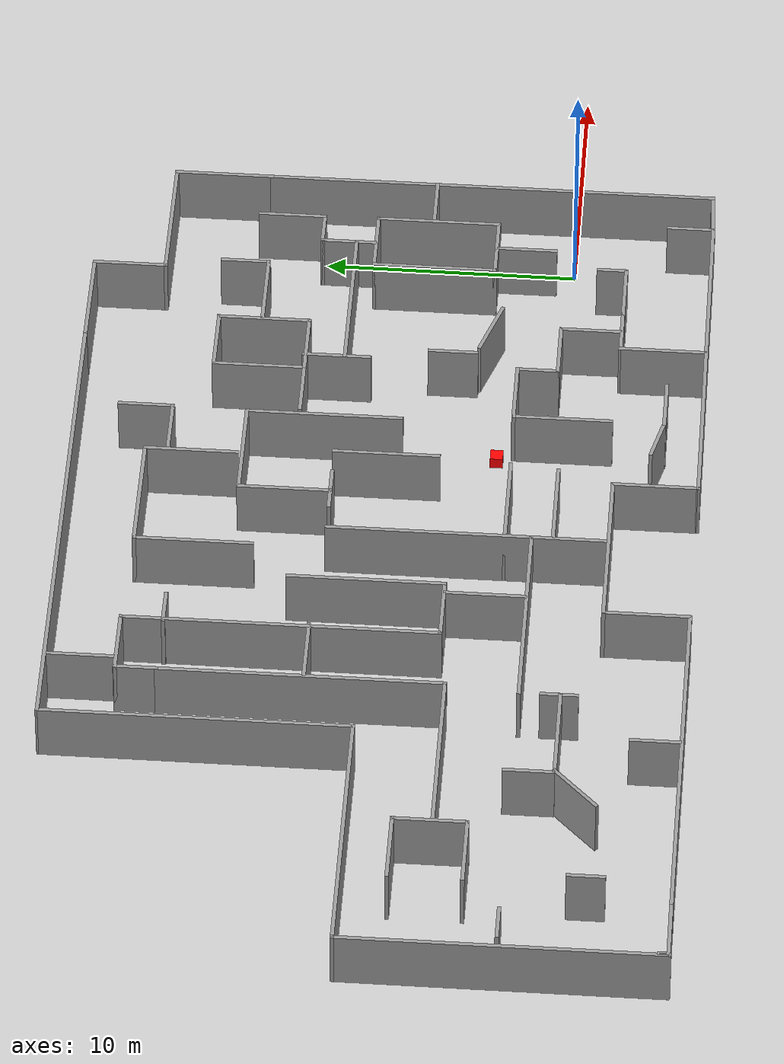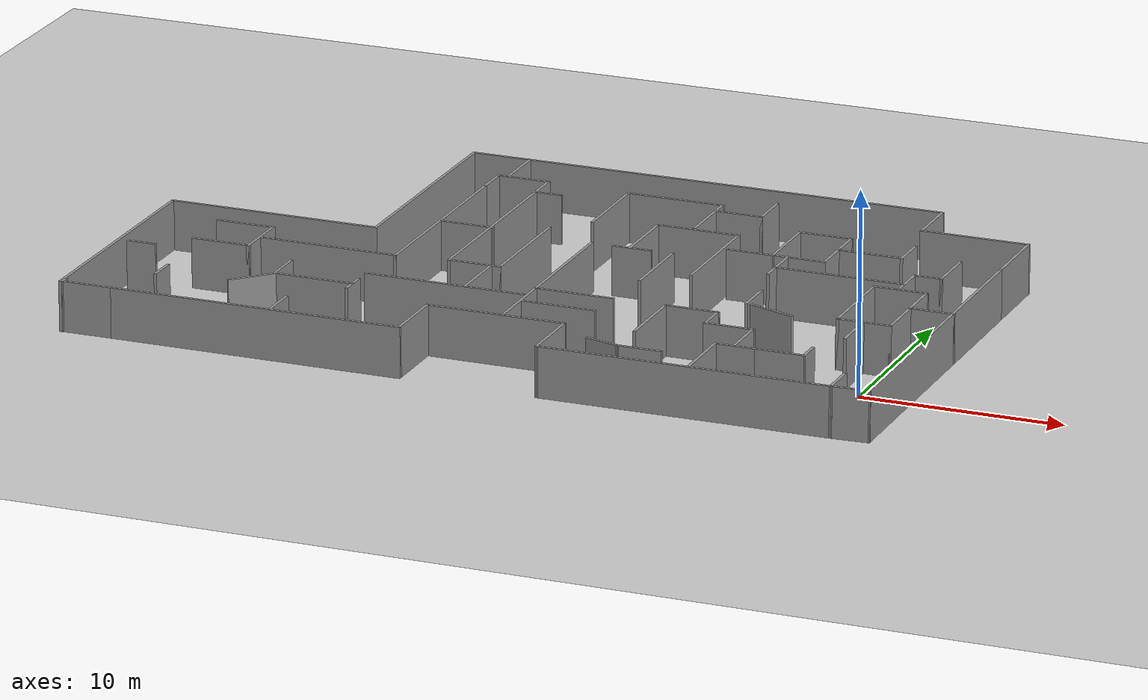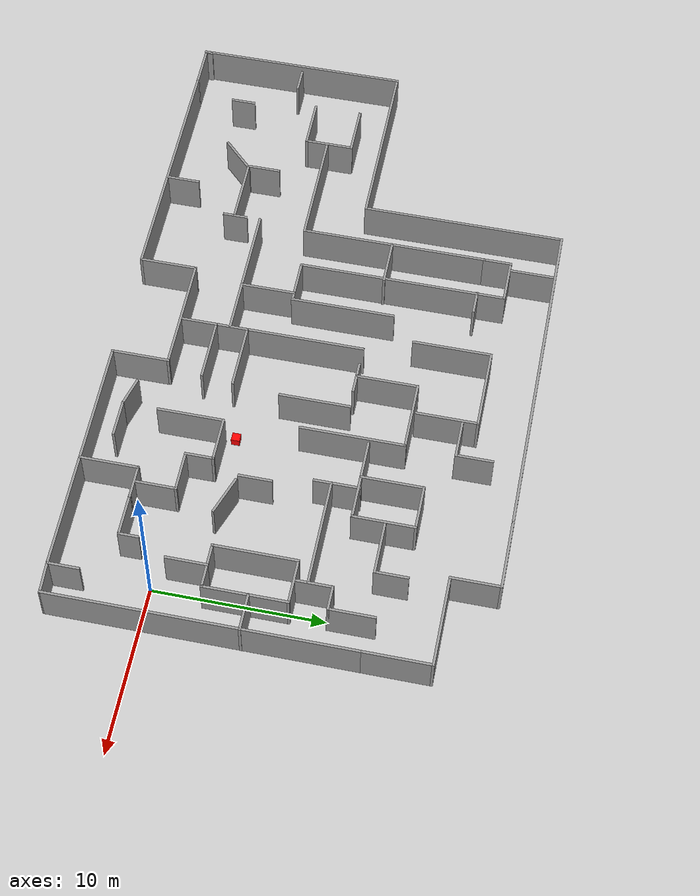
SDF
<sdf version="1.7">
 <world name="default">
  <light name="sun" type="directional">
   <pose>0 0 10 0 -0 0</pose>
   <diffuse>0.8 0.8 0.8 1</diffuse>
   <specular>0.2 0.2 0.2 1</specular>
   <attenuation>
    <range>1000</range>
    <constant>0.9</constant>
    <linear>0.01</linear>
    <quadratic>0.001</quadratic>
   </attenuation>
   <direction>-0.5 0.1 -0.9</direction>
   <spot><inner_angle>0</inner_angle><outer_angle>0</outer_angle><falloff>0</falloff></spot>
  </light>
  <model name="ground_plane">
   <static>1</static>
   <link name="link">
    <collision name="collision">
     <geometry><plane><normal>0 0 1</normal><size>100 100</size></plane></geometry>
     <surface><friction><ode><mu>100</mu><mu2>50</mu2></ode></friction></surface>
    </collision>
    <visual name="visual">
     <cast_shadows>0</cast_shadows>
     <geometry><plane><normal>0 0 1</normal><size>100 100</size></plane></geometry>
     <material>
      <script><uri>file://media/materials/scripts/gazebo.material</uri><name>Gazebo/Grey</name></script>
     </material>
    </visual>
   </link>
  </model>
  <gravity>0 0 -9.8</gravity>
  <magnetic_field>6e-06 2.3e-05 -4.2e-05</magnetic_field>
  <atmosphere type="adiabatic"/>
  <physics type="ode">
   <max_step_size>0.001</max_step_size>
   <real_time_factor>1</real_time_factor>
   <real_time_update_rate>1000</real_time_update_rate>
  </physics>
  <scene><ambient>0.4 0.4 0.4 1</ambient><background>0.7 0.7 0.7 1</background><shadows>1</shadows></scene>
  <spherical_coordinates>
   <surface_model>EARTH_WGS84</surface_model>
   <latitude_deg>0</latitude_deg>
   <longitude_deg>0</longitude_deg>
   <elevation>0</elevation>
   <heading_deg>0</heading_deg>
  </spherical_coordinates>
  <model name="world_5">
   <pose>-17.654 6.75687 0 0 -0 0</pose>
   <link name="Wall_11">
    <collision name="Wall_11_Collision">
     <geometry><box><size>3.5 0.15 2.5</size></box></geometry>
     <pose>0 0 1.25 0 -0 0</pose>
    </collision>
    <visual name="Wall_11_Visual">
     <pose>0 0 1.25 0 -0 0</pose>
     <geometry><box><size>3.5 0.15 2.5</size></box></geometry>
     <material>
      <script><uri>file://media/materials/scripts/gazebo.material</uri><name>Gazebo/Grey</name></script>
      <ambient>1 1 1 1</ambient>
     </material>
     <meta><layer>0</layer></meta>
    </visual>
    <pose>-2.85604 -10.6615 0 0 -0 -1.5708</pose>
   </link>
   <link name="Wall_12">
    <collision name="Wall_12_Collision">
     <geometry><box><size>14.75 0.15 2.5</size></box></geometry>
     <pose>0 0 1.25 0 -0 0</pose>
    </collision>
    <visual name="Wall_12_Visual">
     <pose>0 0 1.25 0 -0 0</pose>
     <geometry><box><size>14.75 0.15 2.5</size></box></geometry>
     <material>
      <script><uri>file://media/materials/scripts/gazebo.material</uri><name>Gazebo/Grey</name></script>
      <ambient>1 1 1 1</ambient>
     </material>
     <meta><layer>0</layer></meta>
    </visual>
    <pose>-10.156 -12.3365 0 0 -0 3.14159</pose>
   </link>
   <link name="Wall_14">
    <collision name="Wall_14_Collision">
     <geometry><box><size>3.5 0.15 2.5</size></box></geometry>
     <pose>0 0 1.25 0 -0 0</pose>
    </collision>
    <visual name="Wall_14_Visual">
     <pose>0 0 1.25 0 -0 0</pose>
     <geometry><box><size>3.5 0.15 2.5</size></box></geometry>
     <material>
      <script><uri>file://media/materials/scripts/gazebo.material</uri><name>Gazebo/Grey</name></script>
      <ambient>1 1 1 1</ambient>
     </material>
     <meta><layer>0</layer></meta>
    </visual>
    <pose>11.4235 -10.5695 0 0 -0 1.5708</pose>
   </link>
   <link name="Wall_190">
    <collision name="Wall_190_Collision">
     <geometry><box><size>12.25 0.15 2.5</size></box></geometry>
     <pose>0 0 1.25 0 -0 0</pose>
    </collision>
    <visual name="Wall_190_Visual">
     <pose>0 0 1.25 0 -0 0</pose>
     <geometry><box><size>12.25 0.15 2.5</size></box></geometry>
     <material>
      <script><uri>file://media/materials/scripts/gazebo.material</uri><name>Gazebo/Grey</name></script>
      <ambient>1 1 1 1</ambient>
     </material>
     <meta><layer>0</layer></meta>
    </visual>
    <pose>-9.42796 6.2709 0 0 -0 -1.5708</pose>
   </link>
   <link name="Wall_191">
    <collision name="Wall_191_Collision">
     <geometry><box><size>10.75 0.15 2.5</size></box></geometry>
     <pose>0 0 1.25 0 -0 0</pose>
    </collision>
    <visual name="Wall_191_Visual">
     <pose>0 0 1.25 0 -0 0</pose>
     <geometry><box><size>10.75 0.15 2.5</size></box></geometry>
     <material>
      <script><uri>file://media/materials/scripts/gazebo.material</uri><name>Gazebo/Grey</name></script>
      <ambient>1 1 1 1</ambient>
     </material>
     <meta><layer>0</layer></meta>
    </visual>
    <pose>-14.728 0.220902 0 0 -0 3.14159</pose>
   </link>
   <link name="Wall_193">
    <collision name="Wall_193_Collision">
     <geometry><box><size>20.2762 0.15 2.5</size></box></geometry>
     <pose>0 0 1.25 0 -0 0</pose>
    </collision>
    <visual name="Wall_193_Visual">
     <pose>0 0 1.25 0 -0 0</pose>
     <geometry><box><size>20.2762 0.15 2.5</size></box></geometry>
     <material>
      <script><uri>file://media/materials/scripts/gazebo.material</uri><name>Gazebo/Grey</name></script>
      <ambient>1 1 1 1</ambient>
     </material>
     <meta><layer>0</layer></meta>
    </visual>
    <pose>0.635095 12.3499 0 0 -0 -3.13871</pose>
   </link>
   <link name="Wall_195">
    <collision name="Wall_195_Collision">
     <geometry><box><size>12.75 0.15 2.5</size></box></geometry>
     <pose>0 0 1.25 0 -0 0</pose>
    </collision>
    <visual name="Wall_195_Visual">
     <pose>0 0 1.25 0 -0 0</pose>
     <geometry><box><size>12.75 0.15 2.5</size></box></geometry>
     <material>
      <script><uri>file://media/materials/scripts/gazebo.material</uri><name>Gazebo/Grey</name></script>
      <ambient>1 1 1 1</ambient>
     </material>
     <meta><layer>0</layer></meta>
    </visual>
    <pose>-20.028 -6.0791 0 0 -0 -1.5708</pose>
   </link>
   <link name="Wall_197">
    <collision name="Wall_197_Collision">
     <geometry><box><size>11 0.15 2.5</size></box></geometry>
     <pose>0 0 1.25 0 -0 0</pose>
    </collision>
    <visual name="Wall_197_Visual">
     <pose>0 0 1.25 0 -0 0</pose>
     <geometry><box><size>11 0.15 2.5</size></box></geometry>
     <material>
      <script><uri>file://media/materials/scripts/gazebo.material</uri><name>Gazebo/Grey</name></script>
      <ambient>1 1 1 1</ambient>
     </material>
     <meta><layer>0</layer></meta>
    </visual>
    <pose>0.916415 -3.41039 0 0 -0 1.5708</pose>
   </link>
   <link name="Wall_198">
    <collision name="Wall_198_Collision">
     <geometry><box><size>2 0.15 2.5</size></box></geometry>
     <pose>0 0 1.25 0 -0 0</pose>
    </collision>
    <visual name="Wall_198_Visual">
     <pose>0 0 1.25 0 -0 0</pose>
     <geometry><box><size>2 0.15 2.5</size></box></geometry>
     <material>
      <script><uri>file://media/materials/scripts/gazebo.material</uri><name>Gazebo/Grey</name></script>
      <ambient>1 1 1 1</ambient>
     </material>
     <meta><layer>0</layer></meta>
    </visual>
    <pose>2.96642 2.01461 0 0 -0 0</pose>
   </link>
   <link name="Wall_199">
    <collision name="Wall_199_Collision">
     <geometry><box><size>4.25 0.15 2.5</size></box></geometry>
     <pose>0 0 1.25 0 -0 0</pose>
    </collision>
    <visual name="Wall_199_Visual">
     <pose>0 0 1.25 0 -0 0</pose>
     <geometry><box><size>4.25 0.15 2.5</size></box></geometry>
     <material>
      <script><uri>file://media/materials/scripts/gazebo.material</uri><name>Gazebo/Grey</name></script>
      <ambient>1 1 1 1</ambient>
     </material>
     <meta><layer>0</layer></meta>
    </visual>
    <pose>5.01642 -0.035393 0 0 -0 -1.5708</pose>
   </link>
   <link name="Wall_202">
    <collision name="Wall_202_Collision">
     <geometry><box><size>4 0.15 2.5</size></box></geometry>
     <pose>0 0 1.25 0 -0 0</pose>
    </collision>
    <visual name="Wall_202_Visual">
     <pose>0 0 1.25 0 -0 0</pose>
     <geometry><box><size>4 0.15 2.5</size></box></geometry>
     <material>
      <script><uri>file://media/materials/scripts/gazebo.material</uri><name>Gazebo/Grey</name></script>
      <ambient>1 1 1 1</ambient>
     </material>
     <meta><layer>0</layer></meta>
    </visual>
    <pose>2.84142 -4.93974 0 0 -0 0</pose>
   </link>
   <link name="Wall_204">
    <collision name="Wall_204_Collision">
     <geometry><box><size>3.75 0.15 2.5</size></box></geometry>
     <pose>0 0 1.25 0 -0 0</pose>
    </collision>
    <visual name="Wall_204_Visual">
     <pose>0 0 1.25 0 -0 0</pose>
     <geometry><box><size>3.75 0.15 2.5</size></box></geometry>
     <material>
      <script><uri>file://media/materials/scripts/gazebo.material</uri><name>Gazebo/Grey</name></script>
      <ambient>1 1 1 1</ambient>
     </material>
     <meta><layer>0</layer></meta>
    </visual>
    <pose>2.78598 -6.818 0 0 -0 0</pose>
   </link>
   <link name="Wall_206">
    <collision name="Wall_206_Collision">
     <geometry><box><size>8.25 0.15 2.5</size></box></geometry>
     <pose>0 0 1.25 0 -0 0</pose>
    </collision>
    <visual name="Wall_206_Visual">
     <pose>0 0 1.25 0 -0 0</pose>
     <geometry><box><size>8.25 0.15 2.5</size></box></geometry>
     <material>
      <script><uri>file://media/materials/scripts/gazebo.material</uri><name>Gazebo/Grey</name></script>
      <ambient>1 1 1 1</ambient>
     </material>
     <meta><layer>0</layer></meta>
    </visual>
    <pose>-3.20315 -5.98322 0 0 -0 3.14159</pose>
   </link>
   <link name="Wall_209">
    <collision name="Wall_209_Collision">
     <geometry><box><size>1.5 0.15 2.5</size></box></geometry>
     <pose>0 0 1.25 0 -0 0</pose>
    </collision>
    <visual name="Wall_209_Visual">
     <pose>0 0 1.25 0 -0 0</pose>
     <geometry><box><size>1.5 0.15 2.5</size></box></geometry>
     <material>
      <script><uri>file://media/materials/scripts/gazebo.material</uri><name>Gazebo/Grey</name></script>
      <ambient>1 1 1 1</ambient>
     </material>
     <meta><layer>0</layer></meta>
    </visual>
    <pose>-7.25315 -7.53322 0 0 -0 -1.5708</pose>
   </link>
   <link name="Wall_21">
    <collision name="Wall_21_Collision">
     <geometry><box><size>2.07804 0.15 2.5</size></box></geometry>
     <pose>0 0 1.25 0 -0 0</pose>
    </collision>
    <visual name="Wall_21_Visual">
     <pose>0 0 1.25 0 -0 0</pose>
     <geometry><box><size>2.07804 0.15 2.5</size></box></geometry>
     <material>
      <script><uri>file://media/materials/scripts/gazebo.material</uri><name>Gazebo/Grey</name></script>
      <ambient>1 1 1 1</ambient>
     </material>
     <meta><layer>0</layer></meta>
    </visual>
    <pose>12.3875 -8.8936 0 0 -0 0.000946</pose>
   </link>
   <link name="Wall_212">
    <collision name="Wall_212_Collision">
     <geometry><box><size>3 0.15 2.5</size></box></geometry>
     <pose>0 0 1.25 0 -0 0</pose>
    </collision>
    <visual name="Wall_212_Visual">
     <pose>0 0 1.25 0 -0 0</pose>
     <geometry><box><size>3 0.15 2.5</size></box></geometry>
     <material>
      <script><uri>file://media/materials/scripts/gazebo.material</uri><name>Gazebo/Grey</name></script>
      <ambient>1 1 1 1</ambient>
     </material>
     <meta><layer>0</layer></meta>
    </visual>
    <pose>-15.3977 -1.60061 0 0 -0 0</pose>
   </link>
   <link name="Wall_213">
    <collision name="Wall_213_Collision">
     <geometry><box><size>3 0.15 2.5</size></box></geometry>
     <pose>0 0 1.25 0 -0 0</pose>
    </collision>
    <visual name="Wall_213_Visual">
     <pose>0 0 1.25 0 -0 0</pose>
     <geometry><box><size>3 0.15 2.5</size></box></geometry>
     <material>
      <script><uri>file://media/materials/scripts/gazebo.material</uri><name>Gazebo/Grey</name></script>
      <ambient>1 1 1 1</ambient>
     </material>
     <meta><layer>0</layer></meta>
    </visual>
    <pose>-13.9727 -3.02561 0 0 -0 -1.5708</pose>
   </link>
   <link name="Wall_218">
    <collision name="Wall_218_Collision">
     <geometry><box><size>3 0.15 2.5</size></box></geometry>
     <pose>0 0 1.25 0 -0 0</pose>
    </collision>
    <visual name="Wall_218_Visual">
     <pose>0 0 1.25 0 -0 0</pose>
     <geometry><box><size>3 0.15 2.5</size></box></geometry>
     <material>
      <script><uri>file://media/materials/scripts/gazebo.material</uri><name>Gazebo/Grey</name></script>
      <ambient>1 1 1 1</ambient>
     </material>
     <meta><layer>0</layer></meta>
    </visual>
    <pose>-15.3977 -4.45061 0 0 -0 0</pose>
   </link>
   <link name="Wall_22">
    <collision name="Wall_22_Collision">
     <geometry><box><size>2.5 0.15 2.5</size></box></geometry>
     <pose>0 0 1.25 0 -0 0</pose>
    </collision>
    <visual name="Wall_22_Visual">
     <pose>0 0 1.25 0 -0 0</pose>
     <geometry><box><size>2.5 0.15 2.5</size></box></geometry>
     <material>
      <script><uri>file://media/materials/scripts/gazebo.material</uri><name>Gazebo/Grey</name></script>
      <ambient>1 1 1 1</ambient>
     </material>
     <meta><layer>0</layer></meta>
    </visual>
    <pose>14.5265 -8.89268 0 0 -0 0</pose>
   </link>
   <link name="Wall_220">
    <collision name="Wall_220_Collision">
     <geometry><box><size>4 0.15 2.5</size></box></geometry>
     <pose>0 0 1.25 0 -0 0</pose>
    </collision>
    <visual name="Wall_220_Visual">
     <pose>0 0 1.25 0 -0 0</pose>
     <geometry><box><size>4 0.15 2.5</size></box></geometry>
     <material>
      <script><uri>file://media/materials/scripts/gazebo.material</uri><name>Gazebo/Grey</name></script>
      <ambient>1 1 1 1</ambient>
     </material>
     <meta><layer>0</layer></meta>
    </visual>
    <pose>-9.21728 -7.58322 0 0 -0 3.14159</pose>
   </link>
   <link name="Wall_221">
    <collision name="Wall_221_Collision">
     <geometry><box><size>2.5 0.15 2.5</size></box></geometry>
     <pose>0 0 1.25 0 -0 0</pose>
    </collision>
    <visual name="Wall_221_Visual">
     <pose>0 0 1.25 0 -0 0</pose>
     <geometry><box><size>2.5 0.15 2.5</size></box></geometry>
     <material>
      <script><uri>file://media/materials/scripts/gazebo.material</uri><name>Gazebo/Grey</name></script>
      <ambient>1 1 1 1</ambient>
     </material>
     <meta><layer>0</layer></meta>
    </visual>
    <pose>-11.9731 -8.41407 0 0 -0 -2.35619</pose>
   </link>
   <link name="Wall_223">
    <collision name="Wall_223_Collision">
     <geometry><box><size>7 0.15 2.5</size></box></geometry>
     <pose>0 0 1.25 0 -0 0</pose>
    </collision>
    <visual name="Wall_223_Visual">
     <pose>0 0 1.25 0 -0 0</pose>
     <geometry><box><size>7 0.15 2.5</size></box></geometry>
     <material>
      <script><uri>file://media/materials/scripts/gazebo.material</uri><name>Gazebo/Grey</name></script>
      <ambient>1 1 1 1</ambient>
     </material>
     <meta><layer>0</layer></meta>
    </visual>
    <pose>-10.4064 -3.13104 0 0 -0 0</pose>
   </link>
   <link name="Wall_224">
    <collision name="Wall_224_Collision">
     <geometry><box><size>11.25 0.15 2.5</size></box></geometry>
     <pose>0 0 1.25 0 -0 0</pose>
    </collision>
    <visual name="Wall_224_Visual">
     <pose>0 0 1.25 0 -0 0</pose>
     <geometry><box><size>11.25 0.15 2.5</size></box></geometry>
     <material>
      <script><uri>file://media/materials/scripts/gazebo.material</uri><name>Gazebo/Grey</name></script>
      <ambient>1 1 1 1</ambient>
     </material>
     <meta><layer>0</layer></meta>
    </visual>
    <pose>-6.98141 2.41895 0 0 -0 1.5708</pose>
   </link>
   <link name="Wall_225">
    <collision name="Wall_225_Collision">
     <geometry><box><size>1.75 0.15 2.5</size></box></geometry>
     <pose>0 0 1.25 0 -0 0</pose>
    </collision>
    <visual name="Wall_225_Visual">
     <pose>0 0 1.25 0 -0 0</pose>
     <geometry><box><size>1.75 0.15 2.5</size></box></geometry>
     <material>
      <script><uri>file://media/materials/scripts/gazebo.material</uri><name>Gazebo/Grey</name></script>
      <ambient>1 1 1 1</ambient>
     </material>
     <meta><layer>0</layer></meta>
    </visual>
    <pose>-6.98141 8.76896 0 0 -0 1.5708</pose>
   </link>
   <link name="Wall_226">
    <collision name="Wall_226_Collision">
     <geometry><box><size>2.75 0.15 2.5</size></box></geometry>
     <pose>0 0 1.25 0 -0 0</pose>
    </collision>
    <visual name="Wall_226_Visual">
     <pose>0 0 1.25 0 -0 0</pose>
     <geometry><box><size>2.75 0.15 2.5</size></box></geometry>
     <material>
      <script><uri>file://media/materials/scripts/gazebo.material</uri><name>Gazebo/Grey</name></script>
      <ambient>1 1 1 1</ambient>
     </material>
     <meta><layer>0</layer></meta>
    </visual>
    <pose>-5.68141 9.56896 0 0 -0 0</pose>
   </link>
   <link name="Wall_227">
    <collision name="Wall_227_Collision">
     <geometry><box><size>12.5 0.15 2.5</size></box></geometry>
     <pose>0 0 1.25 0 -0 0</pose>
    </collision>
    <visual name="Wall_227_Visual">
     <pose>0 0 1.25 0 -0 0</pose>
     <geometry><box><size>12.5 0.15 2.5</size></box></geometry>
     <material>
      <script><uri>file://media/materials/scripts/gazebo.material</uri><name>Gazebo/Grey</name></script>
      <ambient>1 1 1 1</ambient>
     </material>
     <meta><layer>0</layer></meta>
    </visual>
    <pose>-4.38141 3.39396 0 0 -0 -1.5708</pose>
   </link>
   <link name="Wall_228">
    <collision name="Wall_228_Collision">
     <geometry><box><size>2.75 0.15 2.5</size></box></geometry>
     <pose>0 0 1.25 0 -0 0</pose>
    </collision>
    <visual name="Wall_228_Visual">
     <pose>0 0 1.25 0 -0 0</pose>
     <geometry><box><size>2.75 0.15 2.5</size></box></geometry>
     <material>
      <script><uri>file://media/materials/scripts/gazebo.material</uri><name>Gazebo/Grey</name></script>
      <ambient>1 1 1 1</ambient>
     </material>
     <meta><layer>0</layer></meta>
    </visual>
    <pose>-3.08141 -2.78104 0 0 -0 0</pose>
   </link>
   <link name="Wall_229">
    <collision name="Wall_229_Collision">
     <geometry><box><size>6.25 0.15 2.5</size></box></geometry>
     <pose>0 0 1.25 0 -0 0</pose>
    </collision>
    <visual name="Wall_229_Visual">
     <pose>0 0 1.25 0 -0 0</pose>
     <geometry><box><size>6.25 0.15 2.5</size></box></geometry>
     <material>
      <script><uri>file://media/materials/scripts/gazebo.material</uri><name>Gazebo/Grey</name></script>
      <ambient>1 1 1 1</ambient>
     </material>
     <meta><layer>0</layer></meta>
    </visual>
    <pose>-1.78141 0.268955 0 0 -0 1.5708</pose>
   </link>
   <link name="Wall_233">
    <collision name="Wall_233_Collision">
     <geometry><box><size>2.75 0.15 2.5</size></box></geometry>
     <pose>0 0 1.25 0 -0 0</pose>
    </collision>
    <visual name="Wall_233_Visual">
     <pose>0 0 1.25 0 -0 0</pose>
     <geometry><box><size>2.75 0.15 2.5</size></box></geometry>
     <material>
      <script><uri>file://media/materials/scripts/gazebo.material</uri><name>Gazebo/Grey</name></script>
      <ambient>1 1 1 1</ambient>
     </material>
     <meta><layer>0</layer></meta>
    </visual>
    <pose>-5.60098 2.29504 0 0 -0 3.14159</pose>
   </link>
   <link name="Wall_236">
    <collision name="Wall_236_Collision">
     <geometry><box><size>2 0.15 2.5</size></box></geometry>
     <pose>0 0 1.25 0 -0 0</pose>
    </collision>
    <visual name="Wall_236_Visual">
     <pose>0 0 1.25 0 -0 0</pose>
     <geometry><box><size>1.5 0.15 2.5</size></box></geometry>
     <material>
      <script><uri>file://media/materials/scripts/gazebo.material</uri><name>Gazebo/Grey</name></script>
      <ambient>1 1 1 1</ambient>
     </material>
     <meta><layer>0</layer></meta>
    </visual>
    <pose>-16.3531 -9.06474 0 0 -0 -1.5708</pose>
   </link>
   <link name="Wall_241">
    <collision name="Wall_241_Collision">
     <geometry><box><size>1.5 0.15 2.5</size></box></geometry>
     <pose>0 0 1.25 0 -0 0</pose>
    </collision>
    <visual name="Wall_241_Visual">
     <pose>0 0 1.25 0 -0 0</pose>
     <geometry><box><size>1.5 0.15 2.5</size></box></geometry>
     <material>
      <script><uri>file://media/materials/scripts/gazebo.material</uri><name>Gazebo/Grey</name></script>
      <ambient>1 1 1 1</ambient>
     </material>
     <meta><layer>0</layer></meta>
    </visual>
    <pose>-18.8618 -5.91365 0 0 -0 0</pose>
   </link>
   <link name="Wall_245">
    <collision name="Wall_245_Collision">
     <geometry><box><size>2 0.15 2.5</size></box></geometry>
     <pose>0 0 1.25 0 -0 0</pose>
    </collision>
    <visual name="Wall_245_Visual">
     <pose>0 0 1.25 0 -0 0</pose>
     <geometry><box><size>2 0.15 2.5</size></box></geometry>
     <material>
      <script><uri>file://media/materials/scripts/gazebo.material</uri><name>Gazebo/Grey</name></script>
      <ambient>1 1 1 1</ambient>
     </material>
     <meta><layer>0</layer></meta>
    </visual>
    <pose>-9.37924 -11.3191 0 0 -0 1.5708</pose>
   </link>
   <link name="Wall_249">
    <collision name="Wall_249_Collision">
     <geometry><box><size>3.75 0.15 2.5</size></box></geometry>
     <pose>0 0 1.25 0 -0 0</pose>
    </collision>
    <visual name="Wall_249_Visual">
     <pose>0 0 1.25 0 -0 0</pose>
     <geometry><box><size>3.75 0.15 2.5</size></box></geometry>
     <material>
      <script><uri>file://media/materials/scripts/gazebo.material</uri><name>Gazebo/Grey</name></script>
      <ambient>1 1 1 1</ambient>
     </material>
     <meta><layer>0</layer></meta>
    </visual>
    <pose>2.86424 3.81678 0 0 -0 1.5708</pose>
   </link>
   <link name="Wall_250">
    <collision name="Wall_250_Collision">
     <geometry><box><size>4.25 0.15 2.5</size></box></geometry>
     <pose>0 0 1.25 0 -0 0</pose>
    </collision>
    <visual name="Wall_250_Visual">
     <pose>0 0 1.25 0 -0 0</pose>
     <geometry><box><size>4.25 0.15 2.5</size></box></geometry>
     <material>
      <script><uri>file://media/materials/scripts/gazebo.material</uri><name>Gazebo/Grey</name></script>
      <ambient>1 1 1 1</ambient>
     </material>
     <meta><layer>0</layer></meta>
    </visual>
    <pose>4.91424 5.61678 0 0 -0 0</pose>
   </link>
   <link name="Wall_251">
    <collision name="Wall_251_Collision">
     <geometry><box><size>6.25 0.15 2.5</size></box></geometry>
     <pose>0 0 1.25 0 -0 0</pose>
    </collision>
    <visual name="Wall_251_Visual">
     <pose>0 0 1.25 0 -0 0</pose>
     <geometry><box><size>6.25 0.15 2.5</size></box></geometry>
     <material>
      <script><uri>file://media/materials/scripts/gazebo.material</uri><name>Gazebo/Grey</name></script>
      <ambient>1 1 1 1</ambient>
     </material>
     <meta><layer>0</layer></meta>
    </visual>
    <pose>6.96424 2.56678 0 0 -0 -1.5708</pose>
   </link>
   <link name="Wall_253">
    <collision name="Wall_253_Collision">
     <geometry><box><size>3.75 0.15 2.5</size></box></geometry>
     <pose>0 0 1.25 0 -0 0</pose>
    </collision>
    <visual name="Wall_253_Visual">
     <pose>0 0 1.25 0 -0 0</pose>
     <geometry><box><size>3.75 0.15 2.5</size></box></geometry>
     <material>
      <script><uri>file://media/materials/scripts/gazebo.material</uri><name>Gazebo/Grey</name></script>
      <ambient>1 1 1 1</ambient>
     </material>
     <meta><layer>0</layer></meta>
    </visual>
    <pose>4.67294 7.64287 0 0 -0 1.5708</pose>
   </link>
   <link name="Wall_254">
    <collision name="Wall_254_Collision">
     <geometry><box><size>5 0.15 2.5</size></box></geometry>
     <pose>0 0 1.25 0 -0 0</pose>
    </collision>
    <visual name="Wall_254_Visual">
     <pose>0 0 1.25 0 -0 0</pose>
     <geometry><box><size>5 0.15 2.5</size></box></geometry>
     <material>
      <script><uri>file://media/materials/scripts/gazebo.material</uri><name>Gazebo/Grey</name></script>
      <ambient>1 1 1 1</ambient>
     </material>
     <meta><layer>0</layer></meta>
    </visual>
    <pose>2.24794 9.44287 0 0 -0 3.14159</pose>
   </link>
   <link name="Wall_255">
    <collision name="Wall_255_Collision">
     <geometry><box><size>4.75 0.15 2.5</size></box></geometry>
     <pose>0 0 1.25 0 -0 0</pose>
    </collision>
    <visual name="Wall_255_Visual">
     <pose>0 0 1.25 0 -0 0</pose>
     <geometry><box><size>4.75 0.15 2.5</size></box></geometry>
     <material>
      <script><uri>file://media/materials/scripts/gazebo.material</uri><name>Gazebo/Grey</name></script>
      <ambient>1 1 1 1</ambient>
     </material>
     <meta><layer>0</layer></meta>
    </visual>
    <pose>-0.177062 7.14287 0 0 -0 -1.5708</pose>
   </link>
   <link name="Wall_257">
    <collision name="Wall_257_Collision">
     <geometry><box><size>1.5 0.15 2.5</size></box></geometry>
     <pose>0 0 1.25 0 -0 0</pose>
    </collision>
    <visual name="Wall_257_Visual">
     <pose>0 0 1.25 0 -0 0</pose>
     <geometry><box><size>1.5 0.15 2.5</size></box></geometry>
     <material>
      <script><uri>file://media/materials/scripts/gazebo.material</uri><name>Gazebo/Grey</name></script>
      <ambient>1 1 1 1</ambient>
     </material>
     <meta><layer>0</layer></meta>
    </visual>
    <pose>-3.76511 7.92983 0 0 -0 0</pose>
   </link>
   <link name="Wall_259">
    <collision name="Wall_259_Collision">
     <geometry><box><size>5 0.15 2.5</size></box></geometry>
     <pose>0 0 1.25 0 -0 0</pose>
    </collision>
    <visual name="Wall_259_Visual">
     <pose>0 0 1.25 0 -0 0</pose>
     <geometry><box><size>5 0.15 2.5</size></box></geometry>
     <material>
      <script><uri>file://media/materials/scripts/gazebo.material</uri><name>Gazebo/Grey</name></script>
      <ambient>1 1 1 1</ambient>
     </material>
     <meta><layer>0</layer></meta>
    </visual>
    <pose>9.67185 3.54722 0 0 -0 0</pose>
   </link>
   <link name="Wall_26">
    <collision name="Wall_26_Collision">
     <geometry><box><size>2.5 0.15 2.5</size></box></geometry>
     <pose>0 0 1.25 0 -0 0</pose>
    </collision>
    <visual name="Wall_26_Visual">
     <pose>0 0 1.25 0 -0 0</pose>
     <geometry><box><size>2.5 0.15 2.5</size></box></geometry>
     <material>
      <script><uri>file://media/materials/scripts/gazebo.material</uri><name>Gazebo/Grey</name></script>
      <ambient>1 1 1 1</ambient>
     </material>
     <meta><layer>0</layer></meta>
    </visual>
    <pose>12.343 -7.65836 0 0 -0 1.5708</pose>
   </link>
   <link name="Wall_260">
    <collision name="Wall_260_Collision">
     <geometry><box><size>3.75 0.15 2.5</size></box></geometry>
     <pose>0 0 1.25 0 -0 0</pose>
    </collision>
    <visual name="Wall_260_Visual">
     <pose>0 0 1.25 0 -0 0</pose>
     <geometry><box><size>3.75 0.15 2.5</size></box></geometry>
     <material>
      <script><uri>file://media/materials/scripts/gazebo.material</uri><name>Gazebo/Grey</name></script>
      <ambient>1 1 1 1</ambient>
     </material>
     <meta><layer>0</layer></meta>
    </visual>
    <pose>12.0969 5.34722 0 0 -0 1.5708</pose>
   </link>
   <link name="Wall_261">
    <collision name="Wall_261_Collision">
     <geometry><box><size>2.75 0.15 2.5</size></box></geometry>
     <pose>0 0 1.25 0 -0 0</pose>
    </collision>
    <visual name="Wall_261_Visual">
     <pose>0 0 1.25 0 -0 0</pose>
     <geometry><box><size>2.75 0.15 2.5</size></box></geometry>
     <material>
      <script><uri>file://media/materials/scripts/gazebo.material</uri><name>Gazebo/Grey</name></script>
      <ambient>1 1 1 1</ambient>
     </material>
     <meta><layer>0</layer></meta>
    </visual>
    <pose>10.7969 7.14722 0 0 -0 3.14159</pose>
   </link>
   <link name="Wall_262">
    <collision name="Wall_262_Collision">
     <geometry><box><size>3.75 0.15 2.5</size></box></geometry>
     <pose>0 0 1.25 0 -0 0</pose>
    </collision>
    <visual name="Wall_262_Visual">
     <pose>0 0 1.25 0 -0 0</pose>
     <geometry><box><size>3.75 0.15 2.5</size></box></geometry>
     <material>
      <script><uri>file://media/materials/scripts/gazebo.material</uri><name>Gazebo/Grey</name></script>
      <ambient>1 1 1 1</ambient>
     </material>
     <meta><layer>0</layer></meta>
    </visual>
    <pose>9.49685 5.34722 0 0 -0 -1.5708</pose>
   </link>
   <link name="Wall_264">
    <collision name="Wall_264_Collision">
     <geometry><box><size>3.25 0.15 2.5</size></box></geometry>
     <pose>0 0 1.25 0 -0 0</pose>
    </collision>
    <visual name="Wall_264_Visual">
     <pose>0 0 1.25 0 -0 0</pose>
     <geometry><box><size>3.25 0.15 2.5</size></box></geometry>
     <material>
      <script><uri>file://media/materials/scripts/gazebo.material</uri><name>Gazebo/Grey</name></script>
      <ambient>1 1 1 1</ambient>
     </material>
     <meta><layer>0</layer></meta>
    </visual>
    <pose>13.736 5.42548 0 0 -0 0</pose>
   </link>
   <link name="Wall_265">
    <collision name="Wall_265_Collision">
     <geometry><box><size>2 0.15 2.5</size></box></geometry>
     <pose>0 0 1.25 0 -0 0</pose>
    </collision>
    <visual name="Wall_265_Visual">
     <pose>0 0 1.25 0 -0 0</pose>
     <geometry><box><size>2 0.15 2.5</size></box></geometry>
     <material>
      <script><uri>file://media/materials/scripts/gazebo.material</uri><name>Gazebo/Grey</name></script>
      <ambient>1 1 1 1</ambient>
     </material>
     <meta><layer>0</layer></meta>
    </visual>
    <pose>15.286 6.35048 0 0 -0 1.5708</pose>
   </link>
   <link name="Wall_267">
    <collision name="Wall_267_Collision">
     <geometry><box><size>2.5 0.15 2.5</size></box></geometry>
     <pose>0 0 1.25 0 -0 0</pose>
    </collision>
    <visual name="Wall_267_Visual">
     <pose>0 0 1.25 0 -0 0</pose>
     <geometry><box><size>2.5 0.15 2.5</size></box></geometry>
     <material>
      <script><uri>file://media/materials/scripts/gazebo.material</uri><name>Gazebo/Grey</name></script>
      <ambient>1 1 1 1</ambient>
     </material>
     <meta><layer>0</layer></meta>
    </visual>
    <pose>5.84794 8.55591 0 0 -0 0</pose>
   </link>
   <link name="Wall_268">
    <collision name="Wall_268_Collision">
     <geometry><box><size>2.25 0.15 2.5</size></box></geometry>
     <pose>0 0 1.25 0 -0 0</pose>
    </collision>
    <visual name="Wall_268_Visual">
     <pose>0 0 1.25 0 -0 0</pose>
     <geometry><box><size>2.25 0.15 2.5</size></box></geometry>
     <material>
      <script><uri>file://media/materials/scripts/gazebo.material</uri><name>Gazebo/Grey</name></script>
      <ambient>1 1 1 1</ambient>
     </material>
     <meta><layer>0</layer></meta>
    </visual>
    <pose>7.02294 9.60591 0 0 -0 1.5708</pose>
   </link>
   <link name="Wall_27">
    <collision name="Wall_27_Collision">
     <geometry><box><size>2.5 0.15 2.5</size></box></geometry>
     <pose>0 0 1.25 0 -0 0</pose>
    </collision>
    <visual name="Wall_27_Visual">
     <pose>0 0 1.25 0 -0 0</pose>
     <geometry><box><size>2.5 0.15 2.5</size></box></geometry>
     <material>
      <script><uri>file://media/materials/scripts/gazebo.material</uri><name>Gazebo/Grey</name></script>
      <ambient>1 1 1 1</ambient>
     </material>
     <meta><layer>0</layer></meta>
    </visual>
    <pose>11.168 -6.48336 0 0 -0 3.14159</pose>
   </link>
   <link name="Wall_271">
    <collision name="Wall_271_Collision">
     <geometry><box><size>2.75 0.15 2.5</size></box></geometry>
     <pose>0 0 1.25 0 -0 0</pose>
    </collision>
    <visual name="Wall_271_Visual">
     <pose>0 0 1.25 0 -0 0</pose>
     <geometry><box><size>2.75 0.15 2.5</size></box></geometry>
     <material>
      <script><uri>file://media/materials/scripts/gazebo.material</uri><name>Gazebo/Grey</name></script>
      <ambient>1 1 1 1</ambient>
     </material>
     <meta><layer>0</layer></meta>
    </visual>
    <pose>10.2382 2.31678 0 0 -0 -1.5708</pose>
   </link>
   <link name="Wall_28">
    <collision name="Wall_28_Collision">
     <geometry><box><size>1.75 0.15 2.5</size></box></geometry>
     <pose>0 0 1.25 0 -0 0</pose>
    </collision>
    <visual name="Wall_28_Visual">
     <pose>0 0 1.25 0 -0 0</pose>
     <geometry><box><size>1.75 0.15 2.5</size></box></geometry>
     <material>
      <script><uri>file://media/materials/scripts/gazebo.material</uri><name>Gazebo/Grey</name></script>
      <ambient>1 1 1 1</ambient>
     </material>
     <meta><layer>0</layer></meta>
    </visual>
    <pose>9.993 -5.68336 0 0 -0 1.5708</pose>
   </link>
   <link name="Wall_29">
    <collision name="Wall_29_Collision">
     <geometry><box><size>2.75 0.15 2.5</size></box></geometry>
     <pose>0 0 1.25 0 -0 0</pose>
    </collision>
    <visual name="Wall_29_Visual">
     <pose>0 0 1.25 0 -0 0</pose>
     <geometry><box><size>2.75 0.15 2.5</size></box></geometry>
     <material>
      <script><uri>file://media/materials/scripts/gazebo.material</uri><name>Gazebo/Grey</name></script>
      <ambient>1 1 1 1</ambient>
     </material>
     <meta><layer>0</layer></meta>
    </visual>
    <pose>8.693 -4.88336 0 0 -0 3.14159</pose>
   </link>
   <link name="Wall_30">
    <collision name="Wall_30_Collision">
     <geometry><box><size>4 0.15 2.5</size></box></geometry>
     <pose>0 0 1.25 0 -0 0</pose>
    </collision>
    <visual name="Wall_30_Visual">
     <pose>0 0 1.25 0 -0 0</pose>
     <geometry><box><size>4 0.15 2.5</size></box></geometry>
     <material>
      <script><uri>file://media/materials/scripts/gazebo.material</uri><name>Gazebo/Grey</name></script>
      <ambient>1 1 1 1</ambient>
     </material>
     <meta><layer>0</layer></meta>
    </visual>
    <pose>7.393 -6.80836 0 0 -0 -1.5708</pose>
   </link>
   <link name="Wall_35">
    <collision name="Wall_35_Collision">
     <geometry><box><size>2.25 0.15 2.5</size></box></geometry>
     <pose>0 0 1.25 0 -0 0</pose>
    </collision>
    <visual name="Wall_35_Visual">
     <pose>0 0 1.25 0 -0 0</pose>
     <geometry><box><size>2.25 0.15 2.5</size></box></geometry>
     <material>
      <script><uri>file://media/materials/scripts/gazebo.material</uri><name>Gazebo/Grey</name></script>
      <ambient>1 1 1 1</ambient>
     </material>
     <meta><layer>0</layer></meta>
    </visual>
    <pose>8.443 -10.8334 0 0 -0 3.14159</pose>
   </link>
   <link name="Wall_39">
    <collision name="Wall_39_Collision">
     <geometry><box><size>1.86853 0.15 2.5</size></box></geometry>
     <pose>0 0 1.25 0 -0 0</pose>
    </collision>
    <visual name="Wall_39_Visual">
     <pose>0 0 1.25 0 -0 0</pose>
     <geometry><box><size>1.86853 0.15 2.5</size></box></geometry>
     <material>
      <script><uri>file://media/materials/scripts/gazebo.material</uri><name>Gazebo/Grey</name></script>
      <ambient>1 1 1 1</ambient>
     </material>
     <meta><layer>0</layer></meta>
    </visual>
    <pose>6.56215 -10.6142 0 0 -0 -0.257892</pose>
   </link>
   <link name="Wall_4">
    <collision name="Wall_4_Collision">
     <geometry><box><size>1.9211 0.15 2.5</size></box></geometry>
     <pose>0 0 1.25 0 -0 0</pose>
    </collision>
    <visual name="Wall_4_Visual">
     <pose>0 0 1.25 0 -0 0</pose>
     <geometry><box><size>1.9211 0.15 2.5</size></box></geometry>
     <material>
      <script><uri>file://media/materials/scripts/gazebo.material</uri><name>Gazebo/Grey</name></script>
      <ambient>1 1 1 1</ambient>
     </material>
     <meta><layer>0</layer></meta>
    </visual>
    <pose>18.344 -11.3721 0 0 -0 1.5708</pose>
   </link>
   <link name="Wall_49">
    <collision name="Wall_49_Collision">
     <geometry><box><size>2.5 0.15 2.5</size></box></geometry>
     <pose>0 0 1.25 0 -0 0</pose>
    </collision>
    <visual name="Wall_49_Visual">
     <pose>0 0 1.25 0 -0 0</pose>
     <geometry><box><size>2.5 0.15 2.5</size></box></geometry>
     <material>
      <script><uri>file://media/materials/scripts/gazebo.material</uri><name>Gazebo/Grey</name></script>
      <ambient>1 1 1 1</ambient>
     </material>
     <meta><layer>0</layer></meta>
    </visual>
    <pose>16.7001 -4.8196 0 0 -0 1.5708</pose>
   </link>
   <link name="Wall_50">
    <collision name="Wall_50_Collision">
     <geometry><box><size>1.5 0.15 2.5</size></box></geometry>
     <pose>0 0 1.25 0 -0 0</pose>
    </collision>
    <visual name="Wall_50_Visual">
     <pose>0 0 1.25 0 -0 0</pose>
     <geometry><box><size>1.5 0.15 2.5</size></box></geometry>
     <material>
      <script><uri>file://media/materials/scripts/gazebo.material</uri><name>Gazebo/Grey</name></script>
      <ambient>1 1 1 1</ambient>
     </material>
     <meta><layer>0</layer></meta>
    </visual>
    <pose>17.3751 -3.6446 0 0 -0 0</pose>
   </link>
   <link name="Wall_51">
    <collision name="Wall_51_Collision">
     <geometry><box><size>5 0.15 2.5</size></box></geometry>
     <pose>0 0 1.25 0 -0 0</pose>
    </collision>
    <visual name="Wall_51_Visual">
     <pose>0 0 1.25 0 -0 0</pose>
     <geometry><box><size>5 0.15 2.5</size></box></geometry>
     <material>
      <script><uri>file://media/materials/scripts/gazebo.material</uri><name>Gazebo/Grey</name></script>
      <ambient>1 1 1 1</ambient>
     </material>
     <meta><layer>0</layer></meta>
    </visual>
    <pose>18.0501 -1.2196 0 0 -0 1.5708</pose>
   </link>
   <link name="Wall_52">
    <collision name="Wall_52_Collision">
     <geometry><box><size>2.75 0.15 2.5</size></box></geometry>
     <pose>0 0 1.25 0 -0 0</pose>
    </collision>
    <visual name="Wall_52_Visual">
     <pose>0 0 1.25 0 -0 0</pose>
     <geometry><box><size>2.75 0.15 2.5</size></box></geometry>
     <material>
      <script><uri>file://media/materials/scripts/gazebo.material</uri><name>Gazebo/Grey</name></script>
      <ambient>1 1 1 1</ambient>
     </material>
     <meta><layer>0</layer></meta>
    </visual>
    <pose>16.7501 1.20539 0 0 -0 3.14159</pose>
   </link>
   <link name="Wall_53">
    <collision name="Wall_53_Collision">
     <geometry><box><size>5 0.15 2.5</size></box></geometry>
     <pose>0 0 1.25 0 -0 0</pose>
    </collision>
    <visual name="Wall_53_Visual">
     <pose>0 0 1.25 0 -0 0</pose>
     <geometry><box><size>5 0.15 2.5</size></box></geometry>
     <material>
      <script><uri>file://media/materials/scripts/gazebo.material</uri><name>Gazebo/Grey</name></script>
      <ambient>1 1 1 1</ambient>
     </material>
     <meta><layer>0</layer></meta>
    </visual>
    <pose>15.4501 -1.2196 0 0 -0 -1.5708</pose>
   </link>
   <link name="Wall_54">
    <collision name="Wall_54_Collision">
     <geometry><box><size>1.4 0.15 2.5</size></box></geometry>
     <pose>0 0 1.25 0 -0 0</pose>
    </collision>
    <visual name="Wall_54_Visual">
     <pose>0 0 1.25 0 -0 0</pose>
     <geometry><box><size>1.4 0.15 2.5</size></box></geometry>
     <material>
      <script><uri>file://media/materials/scripts/gazebo.material</uri><name>Gazebo/Grey</name></script>
      <ambient>1 1 1 1</ambient>
     </material>
     <meta><layer>0</layer></meta>
    </visual>
    <pose>16.0751 -3.6446 0 0 -0 0</pose>
   </link>
   <link name="Wall_59">
    <collision name="Wall_59_Collision">
     <geometry><box><size>2 0.15 2.5</size></box></geometry>
     <pose>0 0 1.25 0 -0 0</pose>
    </collision>
    <visual name="Wall_59_Visual">
     <pose>0 0 1.25 0 -0 0</pose>
     <geometry><box><size>2 0.15 2.5</size></box></geometry>
     <material>
      <script><uri>file://media/materials/scripts/gazebo.material</uri><name>Gazebo/Grey</name></script>
      <ambient>1 1 1 1</ambient>
     </material>
     <meta><layer>0</layer></meta>
    </visual>
    <pose>10.7826 -2.27509 0 0 -0 -1.5708</pose>
   </link>
   <link name="Wall_6">
    <collision name="Wall_6_Collision">
     <geometry><box><size>14.5 0.15 2.5</size></box></geometry>
     <pose>0 0 1.25 0 -0 0</pose>
    </collision>
    <visual name="Wall_6_Visual">
     <pose>0 0 1.25 0 -0 0</pose>
     <geometry><box><size>14.5 0.15 2.5</size></box></geometry>
     <material>
      <script><uri>file://media/materials/scripts/gazebo.material</uri><name>Gazebo/Grey</name></script>
      <ambient>1 1 1 1</ambient>
     </material>
     <meta><layer>0</layer></meta>
    </visual>
    <pose>11.169 -12.2971 0 0 -0 -3.13609</pose>
   </link>
   <link name="Wall_60">
    <collision name="Wall_60_Collision">
     <geometry><box><size>2.5 0.15 2.5</size></box></geometry>
     <pose>0 0 1.25 0 -0 0</pose>
    </collision>
    <visual name="Wall_60_Visual">
     <pose>0 0 1.25 0 -0 0</pose>
     <geometry><box><size>2.5 0.15 2.5</size></box></geometry>
     <material>
      <script><uri>file://media/materials/scripts/gazebo.material</uri><name>Gazebo/Grey</name></script>
      <ambient>1 1 1 1</ambient>
     </material>
     <meta><layer>0</layer></meta>
    </visual>
    <pose>12.2076 -3.70009 0 0 -0 -0.337456</pose>
   </link>
   <link name="Wall_7">
    <collision name="Wall_7_Collision">
     <geometry><box><size>3.5 0.15 2.5</size></box></geometry>
     <pose>0 0 1.25 0 -0 0</pose>
    </collision>
    <visual name="Wall_7_Visual">
     <pose>0 0 1.25 0 -0 0</pose>
     <geometry><box><size>3.5 0.15 2.5</size></box></geometry>
     <material>
      <script><uri>file://media/materials/scripts/gazebo.material</uri><name>Gazebo/Grey</name></script>
      <ambient>1 1 1 1</ambient>
     </material>
     <meta><layer>0</layer></meta>
    </visual>
    <pose>3.99396 -10.6615 0 0 -0 1.5708</pose>
   </link>
   <link name="Wall_71">
    <collision name="Wall_71_Collision">
     <geometry><box><size>0.5 0.15 2.5</size></box></geometry>
     <pose>0 0 1.25 0 -0 0</pose>
    </collision>
    <visual name="Wall_71_Visual">
     <pose>0 0 1.25 0 -0 0</pose>
     <geometry><box><size>0.5 0.15 2.5</size></box></geometry>
     <material>
      <script><uri>file://media/materials/scripts/gazebo.material</uri><name>Gazebo/Grey</name></script>
      <ambient>1 1 1 1</ambient>
     </material>
     <meta><layer>0</layer></meta>
    </visual>
    <pose>-19.9559 -12.1751 0 0 -0 -1.5708</pose>
   </link>
   <link name="Wall_72">
    <collision name="Wall_72_Collision">
     <geometry><box><size>2.64988 0.15 2.5</size></box></geometry>
     <pose>0 0 1.25 0 -0 0</pose>
    </collision>
    <visual name="Wall_72_Visual">
     <pose>0 0 1.25 0 -0 0</pose>
     <geometry><box><size>2.64988 0.15 2.5</size></box></geometry>
     <material>
      <script><uri>file://media/materials/scripts/gazebo.material</uri><name>Gazebo/Grey</name></script>
      <ambient>1 1 1 1</ambient>
     </material>
     <meta><layer>0</layer></meta>
    </visual>
    <pose>-18.706 -12.3433 0 0 -0 0.005451</pose>
   </link>
   <link name="Wall_74">
    <collision name="Wall_74_Collision">
     <geometry><box><size>18 0.15 2.5</size></box></geometry>
     <pose>0 0 1.25 0 -0 0</pose>
    </collision>
    <visual name="Wall_74_Visual">
     <pose>0 0 1.25 0 -0 0</pose>
     <geometry><box><size>18 0.15 2.5</size></box></geometry>
     <material>
      <script><uri>file://media/materials/scripts/gazebo.material</uri><name>Gazebo/Grey</name></script>
      <ambient>1 1 1 1</ambient>
     </material>
     <meta><layer>0</layer></meta>
    </visual>
    <pose>20.1482 -3.24612 0 0 -0 1.5708</pose>
   </link>
   <link name="Wall_76">
    <collision name="Wall_76_Collision">
     <geometry><box><size>1.95627 0.15 2.5</size></box></geometry>
     <pose>0 0 1.25 0 -0 0</pose>
    </collision>
    <visual name="Wall_76_Visual">
     <pose>0 0 1.25 0 -0 0</pose>
     <geometry><box><size>1.95627 0.15 2.5</size></box></geometry>
     <material>
      <script><uri>file://media/materials/scripts/gazebo.material</uri><name>Gazebo/Grey</name></script>
      <ambient>1 1 1 1</ambient>
     </material>
     <meta><layer>0</layer></meta>
    </visual>
    <pose>19.2461 -12.2144 0 0 -0 0.047903</pose>
   </link>
   <link name="Wall_78">
    <collision name="Wall_78_Collision">
     <geometry><box><size>2.25 0.15 2.5</size></box></geometry>
     <pose>0 0 1.25 0 -0 0</pose>
    </collision>
    <visual name="Wall_78_Visual">
     <pose>0 0 1.25 0 -0 0</pose>
     <geometry><box><size>2.25 0.15 2.5</size></box></geometry>
     <material>
      <script><uri>file://media/materials/scripts/gazebo.material</uri><name>Gazebo/Grey</name></script>
      <ambient>1 1 1 1</ambient>
     </material>
     <meta><layer>0</layer></meta>
    </visual>
    <pose>19.1118 -1.03406 0 0 -0 0</pose>
   </link>
   <link name="Wall_8">
    <collision name="Wall_8_Collision">
     <geometry><box><size>7 0.15 2.5</size></box></geometry>
     <pose>0 0 1.25 0 -0 0</pose>
    </collision>
    <visual name="Wall_8_Visual">
     <pose>0 0 1.25 0 -0 0</pose>
     <geometry><box><size>7 0.15 2.5</size></box></geometry>
     <material>
      <script><uri>file://media/materials/scripts/gazebo.material</uri><name>Gazebo/Grey</name></script>
      <ambient>1 1 1 1</ambient>
     </material>
     <meta><layer>0</layer></meta>
    </visual>
    <pose>0.568958 -8.98651 0 0 -0 3.14159</pose>
   </link>
   <link name="Wall_85">
    <collision name="Wall_85_Collision">
     <geometry><box><size>2.25 0.15 2.5</size></box></geometry>
     <pose>0 0 1.25 0 -0 0</pose>
    </collision>
    <visual name="Wall_85_Visual">
     <pose>0 0 1.25 0 -0 0</pose>
     <geometry><box><size>2.25 0.15 2.5</size></box></geometry>
     <material>
      <script><uri>file://media/materials/scripts/gazebo.material</uri><name>Gazebo/Grey</name></script>
      <ambient>1 1 1 1</ambient>
     </material>
     <meta><layer>0</layer></meta>
    </visual>
    <pose>16.6633 2.32006 0 0 -0 1.5708</pose>
   </link>
   <link name="Wall_86">
    <collision name="Wall_86_Collision">
     <geometry><box><size>1.5 0.15 2.5</size></box></geometry>
     <pose>0 0 1.25 0 -0 0</pose>
    </collision>
    <visual name="Wall_86_Visual">
     <pose>0 0 1.25 0 -0 0</pose>
     <geometry><box><size>1.5 0.15 2.5</size></box></geometry>
     <material>
      <script><uri>file://media/materials/scripts/gazebo.material</uri><name>Gazebo/Grey</name></script>
      <ambient>1 1 1 1</ambient>
     </material>
     <meta><layer>0</layer></meta>
    </visual>
    <pose>17.3383 3.37006 0 0 -0 0</pose>
   </link>
   <link name="Wall_87">
    <collision name="Wall_87_Collision">
     <geometry><box><size>2.75 0.15 2.5</size></box></geometry>
     <pose>0 0 1.25 0 -0 0</pose>
    </collision>
    <visual name="Wall_87_Visual">
     <pose>0 0 1.25 0 -0 0</pose>
     <geometry><box><size>2.75 0.15 2.5</size></box></geometry>
     <material>
      <script><uri>file://media/materials/scripts/gazebo.material</uri><name>Gazebo/Grey</name></script>
      <ambient>1 1 1 1</ambient>
     </material>
     <meta><layer>0</layer></meta>
    </visual>
    <pose>18.0133 4.67006 0 0 -0 1.5708</pose>
   </link>
   <link name="Wall_89">
    <collision name="Wall_89_Collision">
     <geometry><box><size>4 0.15 2.5</size></box></geometry>
     <pose>0 0 1.25 0 -0 0</pose>
    </collision>
    <visual name="Wall_89_Visual">
     <pose>0 0 1.25 0 -0 0</pose>
     <geometry><box><size>4 0.15 2.5</size></box></geometry>
     <material>
      <script><uri>file://media/materials/scripts/gazebo.material</uri><name>Gazebo/Grey</name></script>
      <ambient>1 1 1 1</ambient>
     </material>
     <meta><layer>0</layer></meta>
    </visual>
    <pose>20.1482 7.60388 0 0 -0 1.5708</pose>
   </link>
   <link name="Wall_90">
    <collision name="Wall_90_Collision">
     <geometry><box><size>5.5 0.15 2.5</size></box></geometry>
     <pose>0 0 1.25 0 -0 0</pose>
    </collision>
    <visual name="Wall_90_Visual">
     <pose>0 0 1.25 0 -0 0</pose>
     <geometry><box><size>5.5 0.15 2.5</size></box></geometry>
     <material>
      <script><uri>file://media/materials/scripts/gazebo.material</uri><name>Gazebo/Grey</name></script>
      <ambient>1 1 1 1</ambient>
     </material>
     <meta><layer>0</layer></meta>
    </visual>
    <pose>17.4732 9.52888 0 0 -0 3.14159</pose>
   </link>
   <link name="Wall_91">
    <collision name="Wall_91_Collision">
     <geometry><box><size>3 0.15 2.5</size></box></geometry>
     <pose>0 0 1.25 0 -0 0</pose>
    </collision>
    <visual name="Wall_91_Visual">
     <pose>0 0 1.25 0 -0 0</pose>
     <geometry><box><size>3 0.15 2.5</size></box></geometry>
     <material>
      <script><uri>file://media/materials/scripts/gazebo.material</uri><name>Gazebo/Grey</name></script>
      <ambient>1 1 1 1</ambient>
     </material>
     <meta><layer>0</layer></meta>
    </visual>
    <pose>14.7982 10.9539 0 0 -0 1.5708</pose>
   </link>
   <link name="Wall_92">
    <collision name="Wall_92_Collision">
     <geometry><box><size>4.25 0.15 2.5</size></box></geometry>
     <pose>0 0 1.25 0 -0 0</pose>
    </collision>
    <visual name="Wall_92_Visual">
     <pose>0 0 1.25 0 -0 0</pose>
     <geometry><box><size>4.25 0.15 2.5</size></box></geometry>
     <material>
      <script><uri>file://media/materials/scripts/gazebo.material</uri><name>Gazebo/Grey</name></script>
      <ambient>1 1 1 1</ambient>
     </material>
     <meta><layer>0</layer></meta>
    </visual>
    <pose>12.7482 12.3789 0 0 -0 3.14159</pose>
   </link>
   <static>1</static>
  </model>
  <model name="target_box">
   <pose>-10.5 2.5 0.249999 -2e-06 1e-06 -1e-06</pose>
   <link name="link">
    <collision name="collision"><geometry><box><size>0.5 0.5 0.5</size></box></geometry></collision>
    <visual name="visual">
     <geometry><box><size>0.5 0.5 0.5</size></box></geometry>
     <material><ambient>1 0 0 1</ambient><diffuse>1 0 0 1</diffuse><specular>0.5 0.5 0.5 1</specular></material>
    </visual>
    <inertial>
     <inertia><ixx>1</ixx><ixy>0</ixy><ixz>0</ixz><iyy>1</iyy><iyz>0</iyz><izz>1</izz></inertia>
     <mass>1</mass>
    </inertial>
   </link>
  </model>
  <model name="world_6">
   <pose>-12.1081 8.27815 0 0 -0 0</pose>
   <link name="Wall_12">
    <collision name="Wall_12_Collision">
     <geometry><box><size>3.25 0.15 2.5</size></box></geometry>
     <pose>0 0 1.25 0 -0 0</pose>
    </collision>
    <visual name="Wall_12_Visual">
     <pose>0 0 1.25 0 -0 0</pose>
     <geometry><box><size>3.25 0.15 2.5</size></box></geometry>
     <material>
      <script><uri>file://media/materials/scripts/gazebo.material</uri><name>Gazebo/Grey</name></script>
      <ambient>1 1 1 1</ambient>
     </material>
     <meta><layer>0</layer></meta>
    </visual>
    <pose>-7.78903 -5.9031 0 0 -0 1.5708</pose>
   </link>
   <link name="Wall_22">
    <collision name="Wall_22_Collision">
     <geometry><box><size>2.75 0.15 2.5</size></box></geometry>
     <pose>0 0 1.25 0 -0 0</pose>
    </collision>
    <visual name="Wall_22_Visual">
     <pose>0 0 1.25 0 -0 0</pose>
     <geometry><box><size>2.75 0.15 2.5</size></box></geometry>
     <material>
      <script><uri>file://media/materials/scripts/gazebo.material</uri><name>Gazebo/Grey</name></script>
      <ambient>1 1 1 1</ambient>
     </material>
     <meta><layer>0</layer></meta>
    </visual>
    <pose>-12.0331 9.46815 0 0 -0 1.5708</pose>
   </link>
   <link name="Wall_35">
    <collision name="Wall_35_Collision">
     <geometry><box><size>6.5 0.15 2.5</size></box></geometry>
     <pose>0 0 1.25 0 -0 0</pose>
    </collision>
    <visual name="Wall_35_Visual">
     <pose>0 0 1.25 0 -0 0</pose>
     <geometry><box><size>6.5 0.15 2.5</size></box></geometry>
     <material>
      <script><uri>file://media/materials/scripts/gazebo.material</uri><name>Gazebo/Grey</name></script>
      <ambient>1 1 1 1</ambient>
     </material>
     <meta><layer>0</layer></meta>
    </visual>
    <pose>7.87554 0.470596 0 0 -0 0</pose>
   </link>
   <static>1</static>
  </model>
  <model name="\world_7">
   <pose>-14.4801 0.159805 0 0 -0 0</pose>
   <link name="Wall_9">
    <collision name="Wall_9_Collision">
     <geometry><box><size>2 0.15 2.5</size></box></geometry>
     <pose>0 0 1.25 0 -0 0</pose>
    </collision>
    <visual name="Wall_9_Visual">
     <pose>0 0 1.25 0 -0 0</pose>
     <geometry><box><size>2 0.15 2.5</size></box></geometry>
     <material>
      <script><uri>file://media/materials/scripts/gazebo.material</uri><name>Gazebo/Grey</name></script>
      <ambient>1 1 1 1</ambient>
     </material>
     <meta><layer>0</layer></meta>
    </visual>
    <pose>-14.4051 -0 0 0 -0 1.5708</pose>
   </link>
   <static>1</static>
  </model>
  <model name="world_8">
   <pose>-0.9775 -1.1025 0 0 -0 0</pose>
   <link name="Wall_9">
    <collision name="Wall_9_Collision">
     <geometry><box><size>1.25 0.15 2.5</size></box></geometry>
     <pose>0 0 1.25 0 -0 0</pose>
    </collision>
    <visual name="Wall_9_Visual">
     <pose>0 0 1.25 0 -0 0</pose>
     <geometry><box><size>1.25 0.15 2.5</size></box></geometry>
     <material>
      <script><uri>file://media/materials/scripts/gazebo.material</uri><name>Gazebo/Grey</name></script>
      <ambient>1 1 1 1</ambient>
     </material>
     <meta><layer>0</layer></meta>
    </visual>
    <pose>-0.9025 -0.4775 0 0 -0 1.5708</pose>
   </link>
   <static>1</static>
  </model>
 </world>
</sdf>
